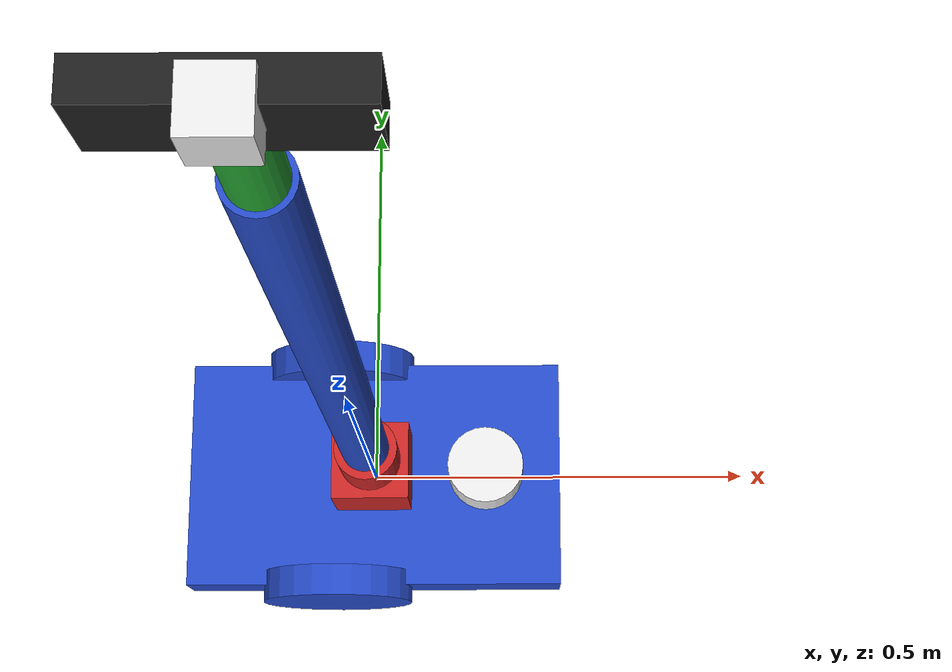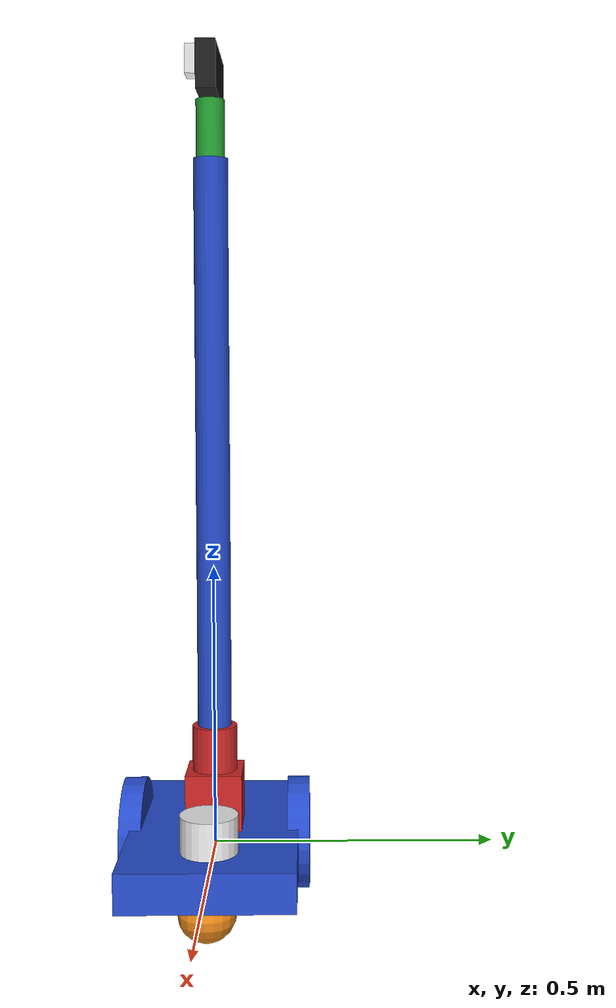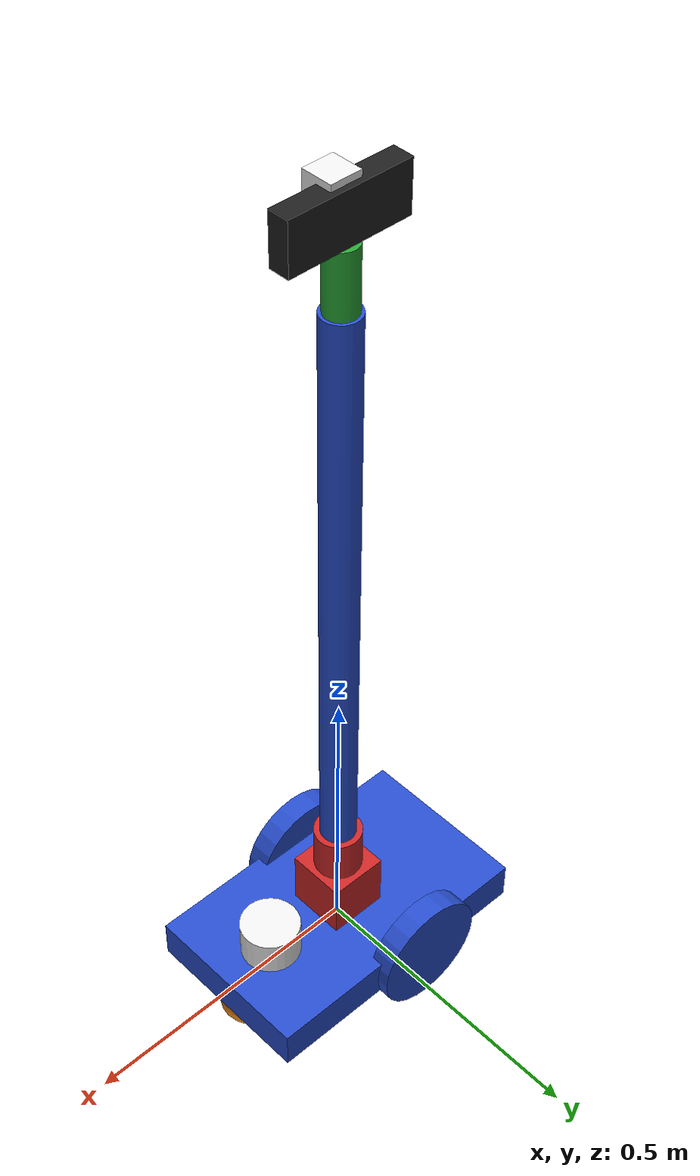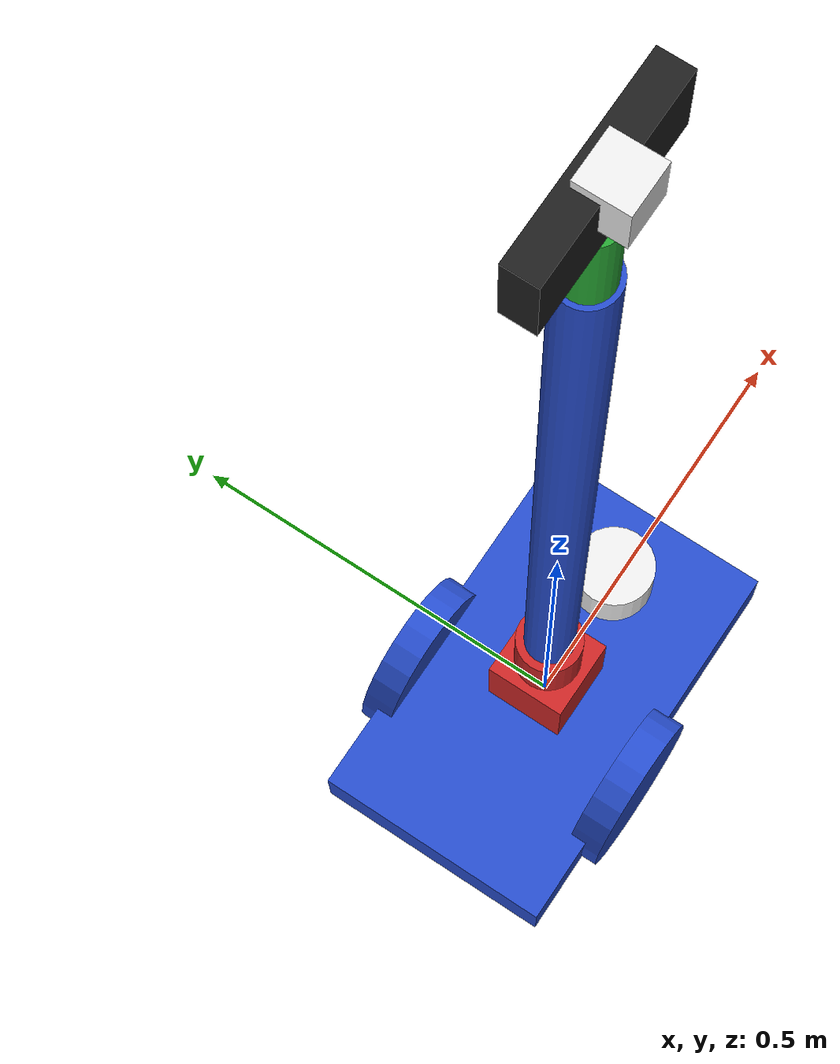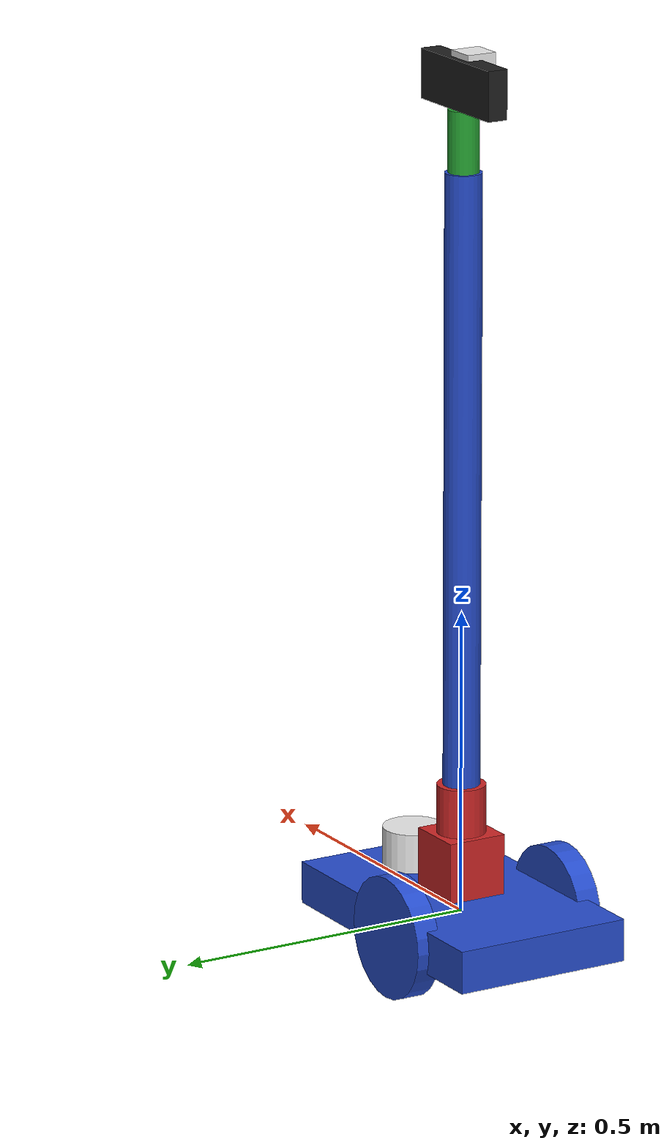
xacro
<?xml version="1.0" ?>
<robot name="m2wr" xmlns:xacro="https://www.ros.org/wiki/xacro" >

 <xacro:include filename="$(find assignment2)/urdf/materials.xacro" />
 <xacro:include filename="$(find assignment2)/urdf/provaRobotAss.gazebo" />

 <xacro:macro name="cylinder_inertia" params="mass r l">
    <inertia ixx="${mass*(3*r*r+l*l)/12}" ixy = "0" ixz = "0"
                iyy="${mass*(3*r*r+l*l)/12}" iyz = "0" izz="${mass*(r*r)/2}" />
 </xacro:macro>

    <xacro:macro name="link_wheel" params="name">
        <link name="${name}">
            <inertial>
              <mass value="0.2"/>
              <origin rpy="0 1.5707 1.5707" xyz="0 0 0"/>
              <inertia ixx="0.000526666666667" ixy="0" ixz="0" iyy="0.000526666666667" iyz="0" izz="0.001"/>
            </inertial>
            <collision name="link_right_wheel_collision">
              <origin rpy="0 1.5707 1.5707" xyz="0 0 0"/>
              <geometry>
                <cylinder length="0.04" radius="0.1"/>
              </geometry>
            </collision>
            <visual name="${name}_visual">
              <origin rpy="0 1.5707 1.5707" xyz="0 0 0"/>
              <geometry>
                <cylinder length="0.04" radius="0.1"/>
              </geometry>
            </visual>
        </link>
    </xacro:macro>

    <xacro:macro name="joint_wheel" params="name child origin_xyz">
      <joint name="${name}" type="continuous">
        <origin rpy="0 0 0" xyz="${origin_xyz}"/>
        <child link="${child}"/>
        <parent link="base_link"/>
        <axis rpy="0 0 0" xyz="0 1 0"/>
        <limit effort="10000" velocity="1000"/>
        <joint_properties damping="1.0" friction="1.0"/>
      </joint>
    </xacro:macro>

  <link name="base_link">
    <!-- pose and inertial -->
    <pose>0 0 0.1 0 0 0</pose>

    <inertial>
      <mass value="5"/> <!--massa base link  base = 5 provo a raddoppiare sia la massa che tutte le inzerzie-->
      <origin rpy="0 0 0" xyz="0 0 0.1"/>
      <inertia ixx="0.0395416666667" ixy="0" ixz="0" iyy="0.106208333333" iyz="0" izz="0.106208333333"/>
    </inertial>

    <collision name="collision_chassis">
      <geometry>
        <box size="0.5 0.3 0.07"/>
      </geometry>
    </collision>

    <visual>
      <origin rpy="0 0 0" xyz="0 0 0"/>
      <geometry>
        <box size="0.5 0.3 0.07"/>
      </geometry>
      <material name="blue"/>
    </visual>

    <!-- caster front -->
    <collision name="caster_front_collision">
      <origin rpy=" 0 0 0" xyz="0.35 0 -0.05"/>
      <geometry>
        <sphere radius="0.05"/>
      </geometry>
      <surface>
        <friction>
          <ode>
            <mu>0</mu>
            <mu2>0</mu2>
            <slip1>1.0</slip1>
            <slip2>1.0</slip2>
          </ode>
        </friction>
      </surface>
    </collision>
    <visual name="caster_front_visual">
      <origin rpy=" 0 0 0" xyz="0.2 0 -0.05"/>
      <geometry>
        <sphere radius="0.05"/>
      </geometry>
    </visual>
    </link>

  <!-- Create wheels -->

  <xacro:link_wheel name="link_right_wheel" />
  <xacro:link_wheel name="link_left_wheel" />
  <xacro:joint_wheel name="joint_right_wheel"  child="link_right_wheel"  origin_xyz="-0.05 0.15 0"  />
  <xacro:joint_wheel name="joint_left_wheel"   child="link_left_wheel"   origin_xyz="-0.05 -0.15 0"  />

   <link name="laser">
    <inertial>
      <origin xyz="0 0 0" rpy="0 0 0" />
      <mass value="1" />
      <xacro:cylinder_inertia mass="1" r="0.05" l="0.1" />
    </inertial>

    <visual>
      <origin xyz="0 0 0" rpy="0 0 0" />
      <geometry>
        <cylinder radius="0.05" length="0.1"/>
      </geometry>
      <material name="white" />
    </visual>

    <collision>
      <origin xyz="0 0 0" rpy="0 0 0"/>
      <geometry>
        <cylinder radius="0.05" length="0.1"/>
      </geometry>
    </collision>
  </link>

  <joint name="joint_laser" type="fixed">
    <origin xyz="0.15 0 0.05" rpy="0 0 0"/>
    <parent link="base_link"/>
    <child link="laser"/>
  </joint>

<!--ARMS DEFINITIONS -->

  <link name="arm_base_link">
  	<inertial>
  		<mass value="0.1"/>
  		<origin xyz="0 0 0" rpy="0 0 0" />
  		<inertia ixx="0.0000416666667" ixy="0" ixz="0" iyy="0.0000416666667" iyz="0" izz="0.0000416666667"/>
  	</inertial>
  	<collision>
  	  <origin xyz="0 0 0" rpy="0 0 0"/>
      <geometry>
        <box size="0.1 0.1 0.1"/>
      </geometry>
  	</collision>
  	<visual>
  	  <origin xyz="0 0 0" rpy="0 0 0"/>
      <geometry>
        <box size="0.1 0.1 0.1"/>
      </geometry>
      <material name="red" />
  	</visual>
  </link>

  <joint name="arm_base_to_base" type="fixed">
  	<origin rpy="0 0 0" xyz="0 0 0.085"/>
  	<parent link="base_link"/>
  	<child link="arm_base_link"/>
  </joint>

<!-- RED ARM DEFINITION -->
  <link name="arm_link_01">
  	<inertial>
  		<mass value="0.025"/>
  		<origin xyz="0 0 0" rpy="0 0 0" />
  		<inertia ixx="0.0" ixy="0" ixz="0" iyy="0.0" iyz="0" izz="0.0"/>
  	</inertial>
  	<collision>
  	  <origin xyz="0 0 0" rpy="0 0 0"/>
      <geometry>
        <cylinder radius="0.04" length="0.08"/>
      </geometry>
  	</collision>
  	<visual>
  	  <origin xyz="0 0 0" rpy="0 0 0"/>
      <geometry>
        <cylinder radius="0.04" length="0.08"/>
      </geometry>
      <material name="red" />
  	</visual>
  </link>

  <joint name="arm_joint_01" type="revolute">
  	<axis xyz="0 0 1"/>
  	<limit effort="1000.0" lower="0" upper="6.28" velocity="0.25"/> <!-- vel = 0.2 -->
  	<origin rpy="0 0 0" xyz="0 0 0.09"/>
  	<parent link="arm_base_link"/>
  	<child link="arm_link_01"/>
  </joint>

<!-- BLUE ARM DEFINITION -->
    <link name="arm_link_02">
  	<inertial>
  		<mass value="0.025"/>
  		<origin xyz="0 0 0" rpy="0 0 0" />
  		<inertia ixx="0.0" ixy="0" ixz="0" iyy="0.0" iyz="0" izz="0.0"/>
  	</inertial>
  	<collision>
  	  <origin xyz="0 0 0.5" rpy="0 0 0"/>
      <geometry>
        <cylinder radius="0.03" length="1"/>  <!-- radius="0.04" length="0.08"  -->
      </geometry>
  	</collision>
  	<visual>
  	  <origin xyz="0 0 0.5" rpy="0 0 0"/>
      <geometry>
        <cylinder radius="0.03" length="1"/>       <!-- radius="0.04" length="0.08"  -->
      </geometry>
      <material name="blue" />
  	</visual>
  </link>

  <joint name="arm_joint_02" type="revolute">
  	<axis xyz="1 0 0"/>
  	<limit effort="1000.0" lower="-1.8" upper="1.8" velocity="0.2"/>
  	<origin rpy="0 0 0" xyz="0 0 0.04"/>  <!-- rpy="0 0 0" xyz="0 0 0.04"  0^^0^^ lunghezzalinkPRECEDENTE-->
  	<parent link="arm_link_01"/>
  	<child link="arm_link_02"/>
  </joint>

<!-- GREEN ARM DEFINITION -->
      <link name="arm_link_03">
  	<inertial>
  		<mass value="0.025"/>
  		<origin xyz="0 0 0" rpy="0 0 0" />
  		<inertia ixx="0.0" ixy="0" ixz="0" iyy="0.0" iyz="0" izz="0.0"/>
  	</inertial>
  	<collision>
  	  <origin xyz="0 0 0.5" rpy="0 0 0"/>
      <geometry>
        <cylinder radius="0.025" length="1"/>
      </geometry>
  	</collision>
  	<visual>
  	  <origin xyz="0 0 0.5" rpy="0 0 0"/>
      <geometry>
        <cylinder radius="0.025" length="1"/>
      </geometry>
      <material name="green" />
  	</visual>
  </link>

  <joint name="arm_joint_03" type="prismatic">
  	<axis xyz="0 0 1"/>
  	<limit effort="1000.0" lower="-0.09" upper="0.9" velocity="0.2"/>
  	<origin rpy="0 0 0" xyz="0 0 0.1"/>  <!-- origin rpy="0 0 0" xyz="0 0 0.08 === 0^^0^^ METTO 0.1 cosi spawna DENTRO all'altro-->
  	<parent link="arm_link_02"/>
  	<child link="arm_link_03"/>
  </joint>

<!-- BLACK ARM DEFINITION -->
    <link name="arm_link_04">
  	<inertial>
  		<mass value="0.025"/>
  		<origin xyz="0 0 0" rpy="0 0 0" />
  		<inertia ixx="0.0" ixy="0" ixz="0" iyy="0.0" iyz="0" izz="0.0"/>
  	</inertial>
  	<collision>
  	  <origin xyz="0 0 0.04" rpy="0 0 1.57"/>
      <geometry>
        <box size="0.034 0.2 0.08"/>
      </geometry>
  	</collision>
  	<visual>
  	  <origin xyz="0 0 0.04" rpy="0 0 1.57"/>
      <geometry>
        <box size="0.034 0.2 0.08"/>
      </geometry>
      <material name="black" />
  	</visual>
  </link>

  <joint name="arm_joint_04" type="revolute">
  	<axis xyz="1 0 0"/>
  	<limit effort="1000.0" lower="-1.8" upper="1.8" velocity="0.5"/>
  	<origin rpy="0 0 0" xyz="0 0 1"/> <!-- origin rpy="0 0 0" xyz="0 0 0.08 === 0^^0^^ lunghezzalinkPRECEDENTE-->
  	<parent link="arm_link_03"/>
  	<child link="arm_link_04"/>
  </joint>

  <!-- CAMERA -->
  <link name="camera_link">
	    <collision>
	      <origin xyz="0.017 0 0.025" rpy="0 0 0"/> <!--  0^^0^^ 0.5*lunghezzalinkSTESSO(dellaZ) -->
	      <geometry>
		<box size="0.05 0.05 0.05"/>
	      </geometry>
	    </collision>
	    <visual>
	      <origin xyz="0.017 0 0.025" rpy="0 0 0"/> <!--  0^^0^^ 0.5*lunghezzalinkSTESSO(dellaZ) -->
	      <geometry>
		<box size="0.05 0.05 0.05"/>
	      </geometry>
	      <material name="white">
	      </material>
	    </visual>
	    <inertial>
	      <mass value="1e-5" />
	      <origin xyz="0 0 0" rpy="0 0 0"/>
	      <inertia ixx="0" ixy="0" ixz="0" iyy="0" iyz="0" izz="0" />
	    </inertial>
  </link>

  <joint name="camera_joint" type="fixed">
	    <axis xyz="0 1 0" />
	    <origin xyz="0.0 0 0.04" rpy="0 0 -1.57"/> <!-- xyz =0^^0^^ metto 0.5*lunghezzalinkPRECEDENTE per metterlo a meta del link blu
	    						-  rpy = 0 0 0 OK QUI E' DOVE DEVO MODIFICARE PER RUOTARE LA CAMERA! METTO -90GRADI OSSIA -PI/2 -->
	    <parent link="arm_link_04"/>
	    <child link="camera_link"/>
	 </joint>

<!-- #############################
     ######### ACTUATORS #########
     ############################# -->

<transmission name="arm_joint_01_trans">
	<type>transmission_interface/SimpleTransmission</type>
	<joint name="arm_joint_01">
		<hardwareInterface>hardware_interface/EffortJointInterface</hardwareInterface>
	</joint>
	<actuator name="motor1">
		<hardwareInterface>hardware_interface/EffortJointInterface</hardwareInterface>
		<mechanicalInterface>1</mechanicalInterface>
	</actuator>
</transmission>

<transmission name="arm_joint_02_trans">
	<type>transmission_interface/SimpleTransmission</type>
	<joint name="arm_joint_02">
		<hardwareInterface>hardware_interface/EffortJointInterface</hardwareInterface>
	</joint>
	<actuator name="motor2">
		<hardwareInterface>hardware_interface/EffortJointInterface</hardwareInterface>
		<mechanicalInterface>1</mechanicalInterface>
	</actuator>
</transmission>

<transmission name="arm_joint_03_trans">
	<type>transmission_interface/SimpleTransmission</type>
	<joint name="arm_joint_03">
		<hardwareInterface>hardware_interface/EffortJointInterface</hardwareInterface>
	</joint>
	<actuator name="motor3">
		<hardwareInterface>hardware_interface/EffortJointInterface</hardwareInterface>
		<mechanicalInterface>1</mechanicalInterface>
	</actuator>
</transmission>

<transmission name="arm_joint_04_trans">
	<type>transmission_interface/SimpleTransmission</type>
	<joint name="arm_joint_04">
		<hardwareInterface>hardware_interface/EffortJointInterface</hardwareInterface>
	</joint>
	<actuator name="motor4">
		<hardwareInterface>hardware_interface/EffortJointInterface</hardwareInterface>
		<mechanicalInterface>1</mechanicalInterface>
	</actuator>
</transmission>

</robot>
